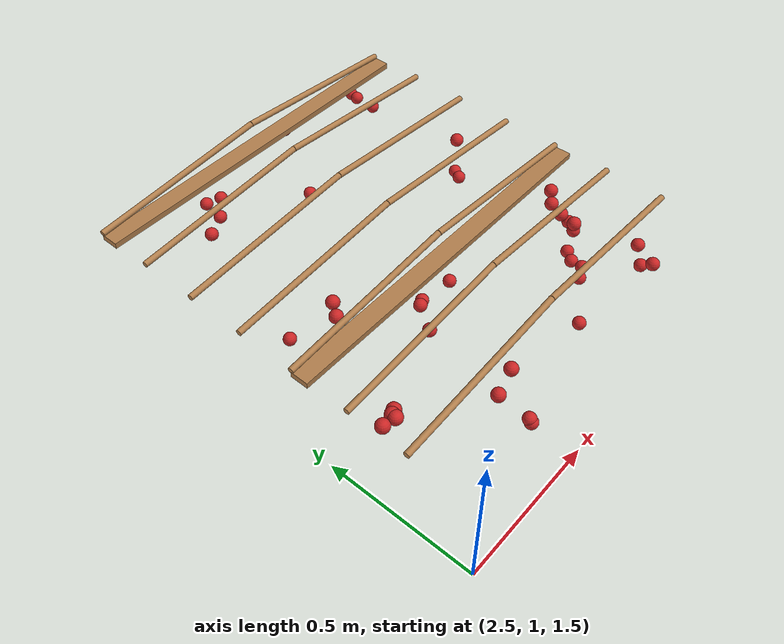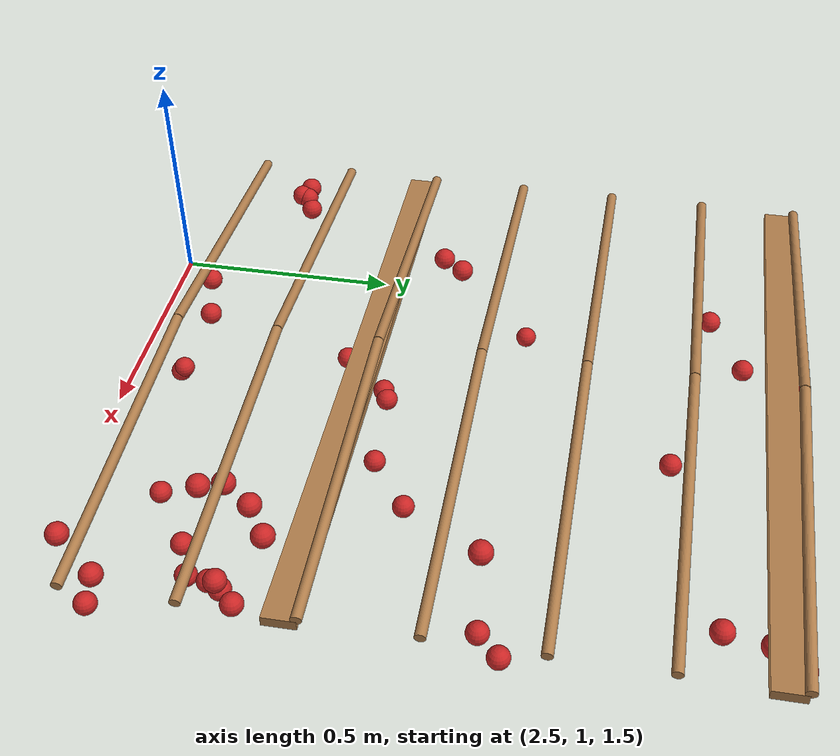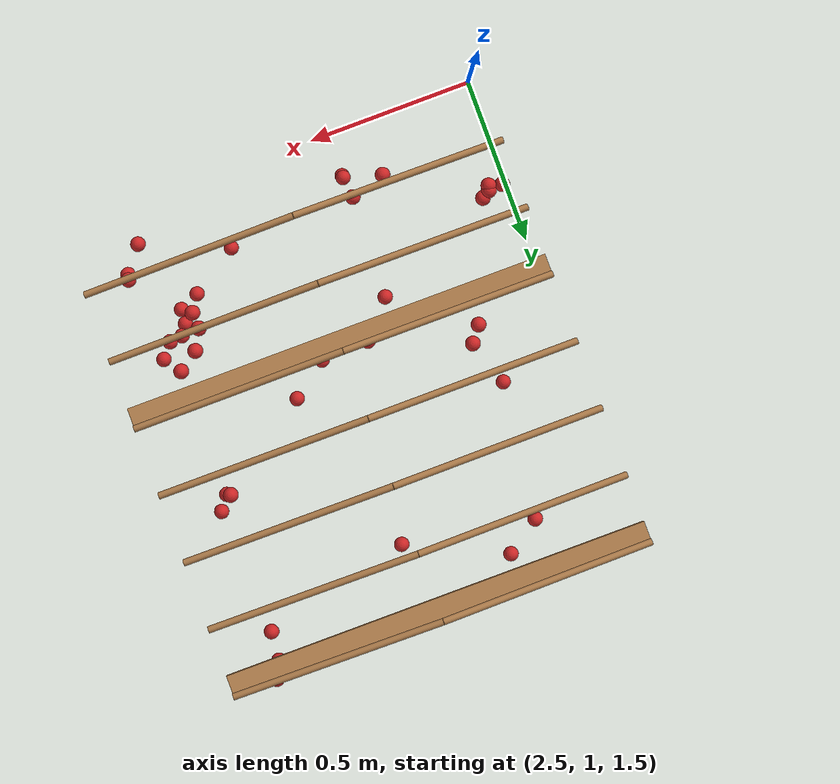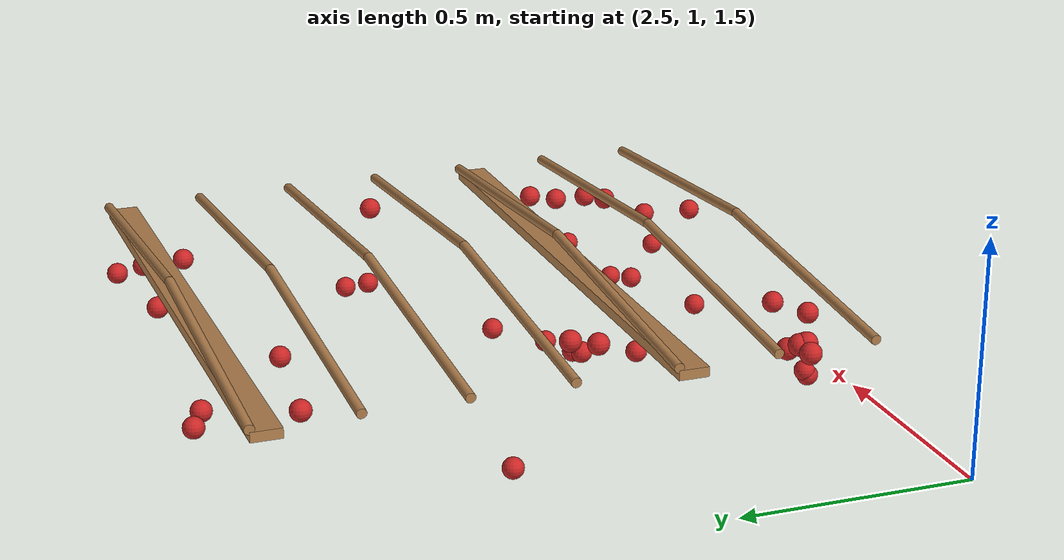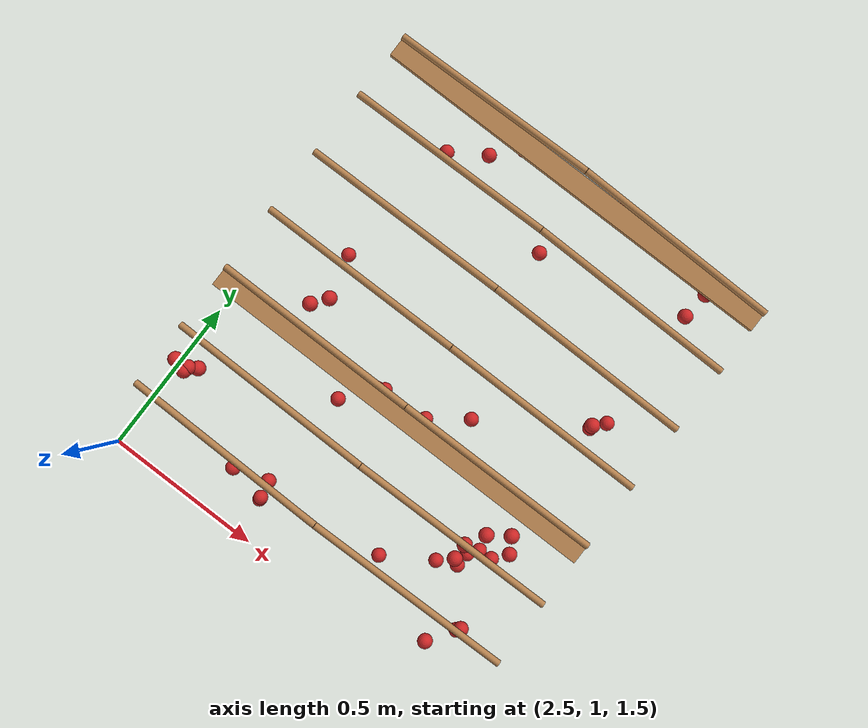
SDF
<sdf version="1.4">
 <model name="pergola">
  <link name="beam_16">
   <pose>3.125 1.6 1.81 0 0 0</pose>
   <collision name="collision"><geometry><box><size>1.25 0.06 0.02</size></box></geometry></collision>
   <visual name="visual">
    <geometry><box><size>1.25 0.06 0.02</size></box></geometry>
    <material><script><name>Gazebo/Wood</name></script></material>
   </visual>
   <inertial>
    <mass>5</mass>
    <inertia>
     <ixx>0.0016666666666666668</ixx>
     <ixy>0.0</ixy>
     <ixz>0.0</ixz>
     <iyy>0.6525416666666667</iyy>
     <iyz>0.0</iyz>
     <izz>0.6512083333333333</izz>
    </inertia>
   </inertial>
  </link>
  <link name="beam_17">
   <pose>3.125 2.4000000000000004 1.81 0 0 0</pose>
   <collision name="collision"><geometry><box><size>1.25 0.06 0.02</size></box></geometry></collision>
   <visual name="visual">
    <geometry><box><size>1.25 0.06 0.02</size></box></geometry>
    <material><script><name>Gazebo/Wood</name></script></material>
   </visual>
   <inertial>
    <mass>5</mass>
    <inertia>
     <ixx>0.0016666666666666668</ixx>
     <ixy>0.0</ixy>
     <ixz>0.0</ixz>
     <iyy>0.6525416666666667</iyy>
     <iyz>0.0</iyz>
     <izz>0.6512083333333333</izz>
    </inertia>
   </inertial>
  </link>
  <link name="vine_108">
   <pose>2.8125 1.2300000000000002 1.85 0 1.4909663410826592 0</pose>
   <collision name="collision">
    <geometry><cylinder><radius>0.01</radius><length>0.6269968101992226</length></cylinder></geometry>
   </collision>
   <visual name="visual">
    <geometry><cylinder><radius>0.01</radius><length>0.6269968101992226</length></cylinder></geometry>
    <material><script><name>Gazebo/WoodFloor</name></script></material>
   </visual>
   <inertial>
    <mass>5</mass>
    <inertia>
     <ixx>0.1639270833333333</ixx>
     <ixy>0.0</ixy>
     <ixz>0.0</ixz>
     <iyy>0.1639270833333333</iyy>
     <iyz>0.0</iyz>
     <izz>0.00025</izz>
    </inertia>
   </inertial>
  </link>
  <link name="vine_109">
   <pose>3.4375 1.2300000000000002 1.85 0 -1.4909663410826592 0</pose>
   <collision name="collision">
    <geometry><cylinder><radius>0.01</radius><length>0.6269968101992226</length></cylinder></geometry>
   </collision>
   <visual name="visual">
    <geometry><cylinder><radius>0.01</radius><length>0.6269968101992226</length></cylinder></geometry>
    <material><script><name>Gazebo/WoodFloor</name></script></material>
   </visual>
   <inertial>
    <mass>5</mass>
    <inertia>
     <ixx>0.1639270833333333</ixx>
     <ixy>0.0</ixy>
     <ixz>0.0</ixz>
     <iyy>0.1639270833333333</iyy>
     <iyz>0.0</iyz>
     <izz>0.00025</izz>
    </inertia>
   </inertial>
  </link>
  <link name="vine_110">
   <pose>2.8125 1.4300000000000002 1.85 0 1.4909663410826592 0</pose>
   <collision name="collision">
    <geometry><cylinder><radius>0.01</radius><length>0.6269968101992226</length></cylinder></geometry>
   </collision>
   <visual name="visual">
    <geometry><cylinder><radius>0.01</radius><length>0.6269968101992226</length></cylinder></geometry>
    <material><script><name>Gazebo/WoodFloor</name></script></material>
   </visual>
   <inertial>
    <mass>5</mass>
    <inertia>
     <ixx>0.1639270833333333</ixx>
     <ixy>0.0</ixy>
     <ixz>0.0</ixz>
     <iyy>0.1639270833333333</iyy>
     <iyz>0.0</iyz>
     <izz>0.00025</izz>
    </inertia>
   </inertial>
  </link>
  <link name="vine_111">
   <pose>3.4375 1.4300000000000002 1.85 0 -1.4909663410826592 0</pose>
   <collision name="collision">
    <geometry><cylinder><radius>0.01</radius><length>0.6269968101992226</length></cylinder></geometry>
   </collision>
   <visual name="visual">
    <geometry><cylinder><radius>0.01</radius><length>0.6269968101992226</length></cylinder></geometry>
    <material><script><name>Gazebo/WoodFloor</name></script></material>
   </visual>
   <inertial>
    <mass>5</mass>
    <inertia>
     <ixx>0.1639270833333333</ixx>
     <ixy>0.0</ixy>
     <ixz>0.0</ixz>
     <iyy>0.1639270833333333</iyy>
     <iyz>0.0</iyz>
     <izz>0.00025</izz>
    </inertia>
   </inertial>
  </link>
  <link name="vine_112">
   <pose>2.8125 1.6300000000000001 1.85 0 1.4909663410826592 0</pose>
   <collision name="collision">
    <geometry><cylinder><radius>0.01</radius><length>0.6269968101992226</length></cylinder></geometry>
   </collision>
   <visual name="visual">
    <geometry><cylinder><radius>0.01</radius><length>0.6269968101992226</length></cylinder></geometry>
    <material><script><name>Gazebo/WoodFloor</name></script></material>
   </visual>
   <inertial>
    <mass>5</mass>
    <inertia>
     <ixx>0.1639270833333333</ixx>
     <ixy>0.0</ixy>
     <ixz>0.0</ixz>
     <iyy>0.1639270833333333</iyy>
     <iyz>0.0</iyz>
     <izz>0.00025</izz>
    </inertia>
   </inertial>
  </link>
  <link name="vine_113">
   <pose>3.4375 1.6300000000000001 1.85 0 -1.4909663410826592 0</pose>
   <collision name="collision">
    <geometry><cylinder><radius>0.01</radius><length>0.6269968101992226</length></cylinder></geometry>
   </collision>
   <visual name="visual">
    <geometry><cylinder><radius>0.01</radius><length>0.6269968101992226</length></cylinder></geometry>
    <material><script><name>Gazebo/WoodFloor</name></script></material>
   </visual>
   <inertial>
    <mass>5</mass>
    <inertia>
     <ixx>0.1639270833333333</ixx>
     <ixy>0.0</ixy>
     <ixz>0.0</ixz>
     <iyy>0.1639270833333333</iyy>
     <iyz>0.0</iyz>
     <izz>0.00025</izz>
    </inertia>
   </inertial>
  </link>
  <link name="vine_114">
   <pose>2.8125 1.83 1.85 0 1.4909663410826592 0</pose>
   <collision name="collision">
    <geometry><cylinder><radius>0.01</radius><length>0.6269968101992226</length></cylinder></geometry>
   </collision>
   <visual name="visual">
    <geometry><cylinder><radius>0.01</radius><length>0.6269968101992226</length></cylinder></geometry>
    <material><script><name>Gazebo/WoodFloor</name></script></material>
   </visual>
   <inertial>
    <mass>5</mass>
    <inertia>
     <ixx>0.1639270833333333</ixx>
     <ixy>0.0</ixy>
     <ixz>0.0</ixz>
     <iyy>0.1639270833333333</iyy>
     <iyz>0.0</iyz>
     <izz>0.00025</izz>
    </inertia>
   </inertial>
  </link>
  <link name="vine_115">
   <pose>3.4375 1.83 1.85 0 -1.4909663410826592 0</pose>
   <collision name="collision">
    <geometry><cylinder><radius>0.01</radius><length>0.6269968101992226</length></cylinder></geometry>
   </collision>
   <visual name="visual">
    <geometry><cylinder><radius>0.01</radius><length>0.6269968101992226</length></cylinder></geometry>
    <material><script><name>Gazebo/WoodFloor</name></script></material>
   </visual>
   <inertial>
    <mass>5</mass>
    <inertia>
     <ixx>0.1639270833333333</ixx>
     <ixy>0.0</ixy>
     <ixz>0.0</ixz>
     <iyy>0.1639270833333333</iyy>
     <iyz>0.0</iyz>
     <izz>0.00025</izz>
    </inertia>
   </inertial>
  </link>
  <link name="vine_116">
   <pose>2.8125 2.03 1.85 0 1.4909663410826592 0</pose>
   <collision name="collision">
    <geometry><cylinder><radius>0.01</radius><length>0.6269968101992226</length></cylinder></geometry>
   </collision>
   <visual name="visual">
    <geometry><cylinder><radius>0.01</radius><length>0.6269968101992226</length></cylinder></geometry>
    <material><script><name>Gazebo/WoodFloor</name></script></material>
   </visual>
   <inertial>
    <mass>5</mass>
    <inertia>
     <ixx>0.1639270833333333</ixx>
     <ixy>0.0</ixy>
     <ixz>0.0</ixz>
     <iyy>0.1639270833333333</iyy>
     <iyz>0.0</iyz>
     <izz>0.00025</izz>
    </inertia>
   </inertial>
  </link>
  <link name="vine_117">
   <pose>3.4375 2.03 1.85 0 -1.4909663410826592 0</pose>
   <collision name="collision">
    <geometry><cylinder><radius>0.01</radius><length>0.6269968101992226</length></cylinder></geometry>
   </collision>
   <visual name="visual">
    <geometry><cylinder><radius>0.01</radius><length>0.6269968101992226</length></cylinder></geometry>
    <material><script><name>Gazebo/WoodFloor</name></script></material>
   </visual>
   <inertial>
    <mass>5</mass>
    <inertia>
     <ixx>0.1639270833333333</ixx>
     <ixy>0.0</ixy>
     <ixz>0.0</ixz>
     <iyy>0.1639270833333333</iyy>
     <iyz>0.0</iyz>
     <izz>0.00025</izz>
    </inertia>
   </inertial>
  </link>
  <link name="vine_118">
   <pose>2.8125 2.23 1.85 0 1.4909663410826592 0</pose>
   <collision name="collision">
    <geometry><cylinder><radius>0.01</radius><length>0.6269968101992226</length></cylinder></geometry>
   </collision>
   <visual name="visual">
    <geometry><cylinder><radius>0.01</radius><length>0.6269968101992226</length></cylinder></geometry>
    <material><script><name>Gazebo/WoodFloor</name></script></material>
   </visual>
   <inertial>
    <mass>5</mass>
    <inertia>
     <ixx>0.1639270833333333</ixx>
     <ixy>0.0</ixy>
     <ixz>0.0</ixz>
     <iyy>0.1639270833333333</iyy>
     <iyz>0.0</iyz>
     <izz>0.00025</izz>
    </inertia>
   </inertial>
  </link>
  <link name="vine_119">
   <pose>3.4375 2.23 1.85 0 -1.4909663410826592 0</pose>
   <collision name="collision">
    <geometry><cylinder><radius>0.01</radius><length>0.6269968101992226</length></cylinder></geometry>
   </collision>
   <visual name="visual">
    <geometry><cylinder><radius>0.01</radius><length>0.6269968101992226</length></cylinder></geometry>
    <material><script><name>Gazebo/WoodFloor</name></script></material>
   </visual>
   <inertial>
    <mass>5</mass>
    <inertia>
     <ixx>0.1639270833333333</ixx>
     <ixy>0.0</ixy>
     <ixz>0.0</ixz>
     <iyy>0.1639270833333333</iyy>
     <iyz>0.0</iyz>
     <izz>0.00025</izz>
    </inertia>
   </inertial>
  </link>
  <link name="vine_120">
   <pose>2.8125 2.43 1.85 0 1.4909663410826592 0</pose>
   <collision name="collision">
    <geometry><cylinder><radius>0.01</radius><length>0.6269968101992226</length></cylinder></geometry>
   </collision>
   <visual name="visual">
    <geometry><cylinder><radius>0.01</radius><length>0.6269968101992226</length></cylinder></geometry>
    <material><script><name>Gazebo/WoodFloor</name></script></material>
   </visual>
   <inertial>
    <mass>5</mass>
    <inertia>
     <ixx>0.1639270833333333</ixx>
     <ixy>0.0</ixy>
     <ixz>0.0</ixz>
     <iyy>0.1639270833333333</iyy>
     <iyz>0.0</iyz>
     <izz>0.00025</izz>
    </inertia>
   </inertial>
  </link>
  <link name="vine_121">
   <pose>3.4375 2.43 1.85 0 -1.4909663410826592 0</pose>
   <collision name="collision">
    <geometry><cylinder><radius>0.01</radius><length>0.6269968101992226</length></cylinder></geometry>
   </collision>
   <visual name="visual">
    <geometry><cylinder><radius>0.01</radius><length>0.6269968101992226</length></cylinder></geometry>
    <material><script><name>Gazebo/WoodFloor</name></script></material>
   </visual>
   <inertial>
    <mass>5</mass>
    <inertia>
     <ixx>0.1639270833333333</ixx>
     <ixy>0.0</ixy>
     <ixz>0.0</ixz>
     <iyy>0.1639270833333333</iyy>
     <iyz>0.0</iyz>
     <izz>0.00025</izz>
    </inertia>
   </inertial>
  </link>
  <link name="fruit_22">
   <pose>3.6042160734607642 2.390323298731228 1.7366323858877157 0 0 0</pose>
   <collision name="fruit_collision_22"><geometry><sphere><radius>0.022</radius></sphere></geometry></collision>
   <visual name="visual">
    <geometry><sphere><radius>0.022</radius></sphere></geometry>
    <material><script><name>Gazebo/Red</name></script></material>
   </visual>
   <inertial>
    <mass>0.05</mass>
    <inertia>
     <ixx>9.679999999999999e-06</ixx>
     <ixy>0.0</ixy>
     <ixz>0.0</ixz>
     <iyy>9.679999999999999e-06</iyy>
     <iyz>0.0</iyz>
     <izz>9.679999999999999e-06</izz>
    </inertia>
   </inertial>
   <sensor name="fruit_contact_22" type="contact">
    <plugin name="contact_plugin_22" filename="libcontact_plugin.so"/>
    <contact><collision>fruit_collision_22</collision><topic>fruit_contact_topic_22</topic></contact>
   </sensor>
  </link>
  <link name="fruit_77">
   <pose>2.7777220592115266 2.2677366420378333 1.722170488734448 0 0 0</pose>
   <collision name="fruit_collision_77"><geometry><sphere><radius>0.022</radius></sphere></geometry></collision>
   <visual name="visual">
    <geometry><sphere><radius>0.022</radius></sphere></geometry>
    <material><script><name>Gazebo/Red</name></script></material>
   </visual>
   <inertial>
    <mass>0.05</mass>
    <inertia>
     <ixx>9.679999999999999e-06</ixx>
     <ixy>0.0</ixy>
     <ixz>0.0</ixz>
     <iyy>9.679999999999999e-06</iyy>
     <iyz>0.0</iyz>
     <izz>9.679999999999999e-06</izz>
    </inertia>
   </inertial>
   <sensor name="fruit_contact_77" type="contact">
    <plugin name="contact_plugin_77" filename="libcontact_plugin.so"/>
    <contact><collision>fruit_collision_77</collision><topic>fruit_contact_topic_77</topic></contact>
   </sensor>
  </link>
  <link name="fruit_90">
   <pose>3.6370142411368276 1.1975529447697955 1.6298855087680122 0 0 0</pose>
   <collision name="fruit_collision_90"><geometry><sphere><radius>0.022</radius></sphere></geometry></collision>
   <visual name="visual">
    <geometry><sphere><radius>0.022</radius></sphere></geometry>
    <material><script><name>Gazebo/Red</name></script></material>
   </visual>
   <inertial>
    <mass>0.05</mass>
    <inertia>
     <ixx>9.679999999999999e-06</ixx>
     <ixy>0.0</ixy>
     <ixz>0.0</ixz>
     <iyy>9.679999999999999e-06</iyy>
     <iyz>0.0</iyz>
     <izz>9.679999999999999e-06</izz>
    </inertia>
   </inertial>
   <sensor name="fruit_contact_90" type="contact">
    <plugin name="contact_plugin_90" filename="libcontact_plugin.so"/>
    <contact><collision>fruit_collision_90</collision><topic>fruit_contact_topic_90</topic></contact>
   </sensor>
  </link>
  <link name="fruit_125">
   <pose>3.329742195719726 1.2257032476896506 1.59493650088647 0 0 0</pose>
   <collision name="fruit_collision_125"><geometry><sphere><radius>0.022</radius></sphere></geometry></collision>
   <visual name="visual">
    <geometry><sphere><radius>0.022</radius></sphere></geometry>
    <material><script><name>Gazebo/Red</name></script></material>
   </visual>
   <inertial>
    <mass>0.05</mass>
    <inertia>
     <ixx>9.679999999999999e-06</ixx>
     <ixy>0.0</ixy>
     <ixz>0.0</ixz>
     <iyy>9.679999999999999e-06</iyy>
     <iyz>0.0</iyz>
     <izz>9.679999999999999e-06</izz>
    </inertia>
   </inertial>
   <sensor name="fruit_contact_125" type="contact">
    <plugin name="contact_plugin_125" filename="libcontact_plugin.so"/>
    <contact><collision>fruit_collision_125</collision><topic>fruit_contact_topic_125</topic></contact>
   </sensor>
  </link>
  <link name="fruit_138">
   <pose>3.482537181798756 1.4283742432640028 1.8215436624711572 0 0 0</pose>
   <collision name="fruit_collision_138"><geometry><sphere><radius>0.022</radius></sphere></geometry></collision>
   <visual name="visual">
    <geometry><sphere><radius>0.022</radius></sphere></geometry>
    <material><script><name>Gazebo/Red</name></script></material>
   </visual>
   <inertial>
    <mass>0.05</mass>
    <inertia>
     <ixx>9.679999999999999e-06</ixx>
     <ixy>0.0</ixy>
     <ixz>0.0</ixz>
     <iyy>9.679999999999999e-06</iyy>
     <iyz>0.0</iyz>
     <izz>9.679999999999999e-06</izz>
    </inertia>
   </inertial>
   <sensor name="fruit_contact_138" type="contact">
    <plugin name="contact_plugin_138" filename="libcontact_plugin.so"/>
    <contact><collision>fruit_collision_138</collision><topic>fruit_contact_topic_138</topic></contact>
   </sensor>
  </link>
  <link name="fruit_157">
   <pose>2.716054375216853 1.8726901224957981 1.5695900463681238 0 0 0</pose>
   <collision name="fruit_collision_157"><geometry><sphere><radius>0.022</radius></sphere></geometry></collision>
   <visual name="visual">
    <geometry><sphere><radius>0.022</radius></sphere></geometry>
    <material><script><name>Gazebo/Red</name></script></material>
   </visual>
   <inertial>
    <mass>0.05</mass>
    <inertia>
     <ixx>9.679999999999999e-06</ixx>
     <ixy>0.0</ixy>
     <ixz>0.0</ixz>
     <iyy>9.679999999999999e-06</iyy>
     <iyz>0.0</iyz>
     <izz>9.679999999999999e-06</izz>
    </inertia>
   </inertial>
   <sensor name="fruit_contact_157" type="contact">
    <plugin name="contact_plugin_157" filename="libcontact_plugin.so"/>
    <contact><collision>fruit_collision_157</collision><topic>fruit_contact_topic_157</topic></contact>
   </sensor>
  </link>
  <link name="fruit_171">
   <pose>2.8464388945641494 1.1956421035334137 1.7481462825417047 0 0 0</pose>
   <collision name="fruit_collision_171"><geometry><sphere><radius>0.022</radius></sphere></geometry></collision>
   <visual name="visual">
    <geometry><sphere><radius>0.022</radius></sphere></geometry>
    <material><script><name>Gazebo/Red</name></script></material>
   </visual>
   <inertial>
    <mass>0.05</mass>
    <inertia>
     <ixx>9.679999999999999e-06</ixx>
     <ixy>0.0</ixy>
     <ixz>0.0</ixz>
     <iyy>9.679999999999999e-06</iyy>
     <iyz>0.0</iyz>
     <izz>9.679999999999999e-06</izz>
    </inertia>
   </inertial>
   <sensor name="fruit_contact_171" type="contact">
    <plugin name="contact_plugin_171" filename="libcontact_plugin.so"/>
    <contact><collision>fruit_collision_171</collision><topic>fruit_contact_topic_171</topic></contact>
   </sensor>
  </link>
  <link name="fruit_193">
   <pose>3.2708199744866335 2.4278009185610814 1.7675410972440744 0 0 0</pose>
   <collision name="fruit_collision_193"><geometry><sphere><radius>0.022</radius></sphere></geometry></collision>
   <visual name="visual">
    <geometry><sphere><radius>0.022</radius></sphere></geometry>
    <material><script><name>Gazebo/Red</name></script></material>
   </visual>
   <inertial>
    <mass>0.05</mass>
    <inertia>
     <ixx>9.679999999999999e-06</ixx>
     <ixy>0.0</ixy>
     <ixz>0.0</ixz>
     <iyy>9.679999999999999e-06</iyy>
     <iyz>0.0</iyz>
     <izz>9.679999999999999e-06</izz>
    </inertia>
   </inertial>
   <sensor name="fruit_contact_193" type="contact">
    <plugin name="contact_plugin_193" filename="libcontact_plugin.so"/>
    <contact><collision>fruit_collision_193</collision><topic>fruit_contact_topic_193</topic></contact>
   </sensor>
  </link>
  <link name="fruit_205">
   <pose>2.741341677895579 1.6909575046930554 1.7889453210980222 0 0 0</pose>
   <collision name="fruit_collision_205"><geometry><sphere><radius>0.022</radius></sphere></geometry></collision>
   <visual name="visual">
    <geometry><sphere><radius>0.022</radius></sphere></geometry>
    <material><script><name>Gazebo/Red</name></script></material>
   </visual>
   <inertial>
    <mass>0.05</mass>
    <inertia>
     <ixx>9.679999999999999e-06</ixx>
     <ixy>0.0</ixy>
     <ixz>0.0</ixz>
     <iyy>9.679999999999999e-06</iyy>
     <iyz>0.0</iyz>
     <izz>9.679999999999999e-06</izz>
    </inertia>
   </inertial>
   <sensor name="fruit_contact_205" type="contact">
    <plugin name="contact_plugin_205" filename="libcontact_plugin.so"/>
    <contact><collision>fruit_collision_205</collision><topic>fruit_contact_topic_205</topic></contact>
   </sensor>
  </link>
  <link name="fruit_213">
   <pose>3.588907817271077 1.8978325460886634 1.6397117616325494 0 0 0</pose>
   <collision name="fruit_collision_213"><geometry><sphere><radius>0.022</radius></sphere></geometry></collision>
   <visual name="visual">
    <geometry><sphere><radius>0.022</radius></sphere></geometry>
    <material><script><name>Gazebo/Red</name></script></material>
   </visual>
   <inertial>
    <mass>0.05</mass>
    <inertia>
     <ixx>9.679999999999999e-06</ixx>
     <ixy>0.0</ixy>
     <ixz>0.0</ixz>
     <iyy>9.679999999999999e-06</iyy>
     <iyz>0.0</iyz>
     <izz>9.679999999999999e-06</izz>
    </inertia>
   </inertial>
   <sensor name="fruit_contact_213" type="contact">
    <plugin name="contact_plugin_213" filename="libcontact_plugin.so"/>
    <contact><collision>fruit_collision_213</collision><topic>fruit_contact_topic_213</topic></contact>
   </sensor>
  </link>
  <link name="fruit_222">
   <pose>3.5696658711676825 1.1364199060318343 1.728486895754031 0 0 0</pose>
   <collision name="fruit_collision_222"><geometry><sphere><radius>0.022</radius></sphere></geometry></collision>
   <visual name="visual">
    <geometry><sphere><radius>0.022</radius></sphere></geometry>
    <material><script><name>Gazebo/Red</name></script></material>
   </visual>
   <inertial>
    <mass>0.05</mass>
    <inertia>
     <ixx>9.679999999999999e-06</ixx>
     <ixy>0.0</ixy>
     <ixz>0.0</ixz>
     <iyy>9.679999999999999e-06</iyy>
     <iyz>0.0</iyz>
     <izz>9.679999999999999e-06</izz>
    </inertia>
   </inertial>
   <sensor name="fruit_contact_222" type="contact">
    <plugin name="contact_plugin_222" filename="libcontact_plugin.so"/>
    <contact><collision>fruit_collision_222</collision><topic>fruit_contact_topic_222</topic></contact>
   </sensor>
  </link>
  <link name="fruit_231">
   <pose>3.5852798248924134 1.4269860410477653 1.6782207255310826 0 0 0</pose>
   <collision name="fruit_collision_231"><geometry><sphere><radius>0.022</radius></sphere></geometry></collision>
   <visual name="visual">
    <geometry><sphere><radius>0.022</radius></sphere></geometry>
    <material><script><name>Gazebo/Red</name></script></material>
   </visual>
   <inertial>
    <mass>0.05</mass>
    <inertia>
     <ixx>9.679999999999999e-06</ixx>
     <ixy>0.0</ixy>
     <ixz>0.0</ixz>
     <iyy>9.679999999999999e-06</iyy>
     <iyz>0.0</iyz>
     <izz>9.679999999999999e-06</izz>
    </inertia>
   </inertial>
   <sensor name="fruit_contact_231" type="contact">
    <plugin name="contact_plugin_231" filename="libcontact_plugin.so"/>
    <contact><collision>fruit_collision_231</collision><topic>fruit_contact_topic_231</topic></contact>
   </sensor>
  </link>
  <link name="fruit_248">
   <pose>3.468882747884183 1.3196782125649715 1.6209497519036276 0 0 0</pose>
   <collision name="fruit_collision_248"><geometry><sphere><radius>0.022</radius></sphere></geometry></collision>
   <visual name="visual">
    <geometry><sphere><radius>0.022</radius></sphere></geometry>
    <material><script><name>Gazebo/Red</name></script></material>
   </visual>
   <inertial>
    <mass>0.05</mass>
    <inertia>
     <ixx>9.679999999999999e-06</ixx>
     <ixy>0.0</ixy>
     <ixz>0.0</ixz>
     <iyy>9.679999999999999e-06</iyy>
     <iyz>0.0</iyz>
     <izz>9.679999999999999e-06</izz>
    </inertia>
   </inertial>
   <sensor name="fruit_contact_248" type="contact">
    <plugin name="contact_plugin_248" filename="libcontact_plugin.so"/>
    <contact><collision>fruit_collision_248</collision><topic>fruit_contact_topic_248</topic></contact>
   </sensor>
  </link>
  <link name="fruit_254">
   <pose>2.875779068658833 2.3420653028918514 1.6831389367654828 0 0 0</pose>
   <collision name="fruit_collision_254"><geometry><sphere><radius>0.022</radius></sphere></geometry></collision>
   <visual name="visual">
    <geometry><sphere><radius>0.022</radius></sphere></geometry>
    <material><script><name>Gazebo/Red</name></script></material>
   </visual>
   <inertial>
    <mass>0.05</mass>
    <inertia>
     <ixx>9.679999999999999e-06</ixx>
     <ixy>0.0</ixy>
     <ixz>0.0</ixz>
     <iyy>9.679999999999999e-06</iyy>
     <iyz>0.0</iyz>
     <izz>9.679999999999999e-06</izz>
    </inertia>
   </inertial>
   <sensor name="fruit_contact_254" type="contact">
    <plugin name="contact_plugin_254" filename="libcontact_plugin.so"/>
    <contact><collision>fruit_collision_254</collision><topic>fruit_contact_topic_254</topic></contact>
   </sensor>
  </link>
  <link name="fruit_256">
   <pose>3.5610736933404863 1.897363465771663 1.821746921978796 0 0 0</pose>
   <collision name="fruit_collision_256"><geometry><sphere><radius>0.022</radius></sphere></geometry></collision>
   <visual name="visual">
    <geometry><sphere><radius>0.022</radius></sphere></geometry>
    <material><script><name>Gazebo/Red</name></script></material>
   </visual>
   <inertial>
    <mass>0.05</mass>
    <inertia>
     <ixx>9.679999999999999e-06</ixx>
     <ixy>0.0</ixy>
     <ixz>0.0</ixz>
     <iyy>9.679999999999999e-06</iyy>
     <iyz>0.0</iyz>
     <izz>9.679999999999999e-06</izz>
    </inertia>
   </inertial>
   <sensor name="fruit_contact_256" type="contact">
    <plugin name="contact_plugin_256" filename="libcontact_plugin.so"/>
    <contact><collision>fruit_collision_256</collision><topic>fruit_contact_topic_256</topic></contact>
   </sensor>
  </link>
  <link name="fruit_303">
   <pose>3.194069569440223 1.6278953154495133 1.614322405554756 0 0 0</pose>
   <collision name="fruit_collision_303"><geometry><sphere><radius>0.022</radius></sphere></geometry></collision>
   <visual name="visual">
    <geometry><sphere><radius>0.022</radius></sphere></geometry>
    <material><script><name>Gazebo/Red</name></script></material>
   </visual>
   <inertial>
    <mass>0.05</mass>
    <inertia>
     <ixx>9.679999999999999e-06</ixx>
     <ixy>0.0</ixy>
     <ixz>0.0</ixz>
     <iyy>9.679999999999999e-06</iyy>
     <iyz>0.0</iyz>
     <izz>9.679999999999999e-06</izz>
    </inertia>
   </inertial>
   <sensor name="fruit_contact_303" type="contact">
    <plugin name="contact_plugin_303" filename="libcontact_plugin.so"/>
    <contact><collision>fruit_collision_303</collision><topic>fruit_contact_topic_303</topic></contact>
   </sensor>
  </link>
  <link name="fruit_324">
   <pose>2.9579807294426406 1.5207849685629424 1.6671188638524705 0 0 0</pose>
   <collision name="fruit_collision_324"><geometry><sphere><radius>0.022</radius></sphere></geometry></collision>
   <visual name="visual">
    <geometry><sphere><radius>0.022</radius></sphere></geometry>
    <material><script><name>Gazebo/Red</name></script></material>
   </visual>
   <inertial>
    <mass>0.05</mass>
    <inertia>
     <ixx>9.679999999999999e-06</ixx>
     <ixy>0.0</ixy>
     <ixz>0.0</ixz>
     <iyy>9.679999999999999e-06</iyy>
     <iyz>0.0</iyz>
     <izz>9.679999999999999e-06</izz>
    </inertia>
   </inertial>
   <sensor name="fruit_contact_324" type="contact">
    <plugin name="contact_plugin_324" filename="libcontact_plugin.so"/>
    <contact><collision>fruit_collision_324</collision><topic>fruit_contact_topic_324</topic></contact>
   </sensor>
  </link>
  <link name="fruit_327">
   <pose>3.5947982073064795 2.3053033396548854 1.74367867693538 0 0 0</pose>
   <collision name="fruit_collision_327"><geometry><sphere><radius>0.022</radius></sphere></geometry></collision>
   <visual name="visual">
    <geometry><sphere><radius>0.022</radius></sphere></geometry>
    <material><script><name>Gazebo/Red</name></script></material>
   </visual>
   <inertial>
    <mass>0.05</mass>
    <inertia>
     <ixx>9.679999999999999e-06</ixx>
     <ixy>0.0</ixy>
     <ixz>0.0</ixz>
     <iyy>9.679999999999999e-06</iyy>
     <iyz>0.0</iyz>
     <izz>9.679999999999999e-06</izz>
    </inertia>
   </inertial>
   <sensor name="fruit_contact_327" type="contact">
    <plugin name="contact_plugin_327" filename="libcontact_plugin.so"/>
    <contact><collision>fruit_collision_327</collision><topic>fruit_contact_topic_327</topic></contact>
   </sensor>
  </link>
  <link name="fruit_329">
   <pose>3.1619692486153075 2.207978989144776 1.672494103210595 0 0 0</pose>
   <collision name="fruit_collision_329"><geometry><sphere><radius>0.022</radius></sphere></geometry></collision>
   <visual name="visual">
    <geometry><sphere><radius>0.022</radius></sphere></geometry>
    <material><script><name>Gazebo/Red</name></script></material>
   </visual>
   <inertial>
    <mass>0.05</mass>
    <inertia>
     <ixx>9.679999999999999e-06</ixx>
     <ixy>0.0</ixy>
     <ixz>0.0</ixz>
     <iyy>9.679999999999999e-06</iyy>
     <iyz>0.0</iyz>
     <izz>9.679999999999999e-06</izz>
    </inertia>
   </inertial>
   <sensor name="fruit_contact_329" type="contact">
    <plugin name="contact_plugin_329" filename="libcontact_plugin.so"/>
    <contact><collision>fruit_collision_329</collision><topic>fruit_contact_topic_329</topic></contact>
   </sensor>
  </link>
  <link name="fruit_345">
   <pose>3.4853329257638768 1.380430025244699 1.8088181221444193 0 0 0</pose>
   <collision name="fruit_collision_345"><geometry><sphere><radius>0.022</radius></sphere></geometry></collision>
   <visual name="visual">
    <geometry><sphere><radius>0.022</radius></sphere></geometry>
    <material><script><name>Gazebo/Red</name></script></material>
   </visual>
   <inertial>
    <mass>0.05</mass>
    <inertia>
     <ixx>9.679999999999999e-06</ixx>
     <ixy>0.0</ixy>
     <ixz>0.0</ixz>
     <iyy>9.679999999999999e-06</iyy>
     <iyz>0.0</iyz>
     <izz>9.679999999999999e-06</izz>
    </inertia>
   </inertial>
   <sensor name="fruit_contact_345" type="contact">
    <plugin name="contact_plugin_345" filename="libcontact_plugin.so"/>
    <contact><collision>fruit_collision_345</collision><topic>fruit_contact_topic_345</topic></contact>
   </sensor>
  </link>
  <link name="fruit_359">
   <pose>3.0486557833255516 1.6232390452571104 1.6470257615617991 0 0 0</pose>
   <collision name="fruit_collision_359"><geometry><sphere><radius>0.022</radius></sphere></geometry></collision>
   <visual name="visual">
    <geometry><sphere><radius>0.022</radius></sphere></geometry>
    <material><script><name>Gazebo/Red</name></script></material>
   </visual>
   <inertial>
    <mass>0.05</mass>
    <inertia>
     <ixx>9.679999999999999e-06</ixx>
     <ixy>0.0</ixy>
     <ixz>0.0</ixz>
     <iyy>9.679999999999999e-06</iyy>
     <iyz>0.0</iyz>
     <izz>9.679999999999999e-06</izz>
    </inertia>
   </inertial>
   <sensor name="fruit_contact_359" type="contact">
    <plugin name="contact_plugin_359" filename="libcontact_plugin.so"/>
    <contact><collision>fruit_collision_359</collision><topic>fruit_contact_topic_359</topic></contact>
   </sensor>
  </link>
  <link name="fruit_388">
   <pose>2.580117532120326 1.3333051083498515 1.8029660815471935 0 0 0</pose>
   <collision name="fruit_collision_388"><geometry><sphere><radius>0.022</radius></sphere></geometry></collision>
   <visual name="visual">
    <geometry><sphere><radius>0.022</radius></sphere></geometry>
    <material><script><name>Gazebo/Red</name></script></material>
   </visual>
   <inertial>
    <mass>0.05</mass>
    <inertia>
     <ixx>9.679999999999999e-06</ixx>
     <ixy>0.0</ixy>
     <ixz>0.0</ixz>
     <iyy>9.679999999999999e-06</iyy>
     <iyz>0.0</iyz>
     <izz>9.679999999999999e-06</izz>
    </inertia>
   </inertial>
   <sensor name="fruit_contact_388" type="contact">
    <plugin name="contact_plugin_388" filename="libcontact_plugin.so"/>
    <contact><collision>fruit_collision_388</collision><topic>fruit_contact_topic_388</topic></contact>
   </sensor>
  </link>
  <link name="fruit_406">
   <pose>3.621177579093106 1.4678708935381408 1.66657366137219 0 0 0</pose>
   <collision name="fruit_collision_406"><geometry><sphere><radius>0.022</radius></sphere></geometry></collision>
   <visual name="visual">
    <geometry><sphere><radius>0.022</radius></sphere></geometry>
    <material><script><name>Gazebo/Red</name></script></material>
   </visual>
   <inertial>
    <mass>0.05</mass>
    <inertia>
     <ixx>9.679999999999999e-06</ixx>
     <ixy>0.0</ixy>
     <ixz>0.0</ixz>
     <iyy>9.679999999999999e-06</iyy>
     <iyz>0.0</iyz>
     <izz>9.679999999999999e-06</izz>
    </inertia>
   </inertial>
   <sensor name="fruit_contact_406" type="contact">
    <plugin name="contact_plugin_406" filename="libcontact_plugin.so"/>
    <contact><collision>fruit_collision_406</collision><topic>fruit_contact_topic_406</topic></contact>
   </sensor>
  </link>
  <link name="fruit_438">
   <pose>2.9474531850650907 1.2246143479281952 1.7387450479077884 0 0 0</pose>
   <collision name="fruit_collision_438"><geometry><sphere><radius>0.022</radius></sphere></geometry></collision>
   <visual name="visual">
    <geometry><sphere><radius>0.022</radius></sphere></geometry>
    <material><script><name>Gazebo/Red</name></script></material>
   </visual>
   <inertial>
    <mass>0.05</mass>
    <inertia>
     <ixx>9.679999999999999e-06</ixx>
     <ixy>0.0</ixy>
     <ixz>0.0</ixz>
     <iyy>9.679999999999999e-06</iyy>
     <iyz>0.0</iyz>
     <izz>9.679999999999999e-06</izz>
    </inertia>
   </inertial>
   <sensor name="fruit_contact_438" type="contact">
    <plugin name="contact_plugin_438" filename="libcontact_plugin.so"/>
    <contact><collision>fruit_collision_438</collision><topic>fruit_contact_topic_438</topic></contact>
   </sensor>
  </link>
  <link name="fruit_455">
   <pose>2.60499499637651 1.3598833280278677 1.7853478720088918 0 0 0</pose>
   <collision name="fruit_collision_455"><geometry><sphere><radius>0.022</radius></sphere></geometry></collision>
   <visual name="visual">
    <geometry><sphere><radius>0.022</radius></sphere></geometry>
    <material><script><name>Gazebo/Red</name></script></material>
   </visual>
   <inertial>
    <mass>0.05</mass>
    <inertia>
     <ixx>9.679999999999999e-06</ixx>
     <ixy>0.0</ixy>
     <ixz>0.0</ixz>
     <iyy>9.679999999999999e-06</iyy>
     <iyz>0.0</iyz>
     <izz>9.679999999999999e-06</izz>
    </inertia>
   </inertial>
   <sensor name="fruit_contact_455" type="contact">
    <plugin name="contact_plugin_455" filename="libcontact_plugin.so"/>
    <contact><collision>fruit_collision_455</collision><topic>fruit_contact_topic_455</topic></contact>
   </sensor>
  </link>
  <link name="fruit_470">
   <pose>3.528514187471284 1.3453946111061417 1.6070310320002212 0 0 0</pose>
   <collision name="fruit_collision_470"><geometry><sphere><radius>0.022</radius></sphere></geometry></collision>
   <visual name="visual">
    <geometry><sphere><radius>0.022</radius></sphere></geometry>
    <material><script><name>Gazebo/Red</name></script></material>
   </visual>
   <inertial>
    <mass>0.05</mass>
    <inertia>
     <ixx>9.679999999999999e-06</ixx>
     <ixy>0.0</ixy>
     <ixz>0.0</ixz>
     <iyy>9.679999999999999e-06</iyy>
     <iyz>0.0</iyz>
     <izz>9.679999999999999e-06</izz>
    </inertia>
   </inertial>
   <sensor name="fruit_contact_470" type="contact">
    <plugin name="contact_plugin_470" filename="libcontact_plugin.so"/>
    <contact><collision>fruit_collision_470</collision><topic>fruit_contact_topic_470</topic></contact>
   </sensor>
  </link>
  <link name="fruit_480">
   <pose>3.632259040139053 1.2211716335322678 1.7094024595203525 0 0 0</pose>
   <collision name="fruit_collision_480"><geometry><sphere><radius>0.022</radius></sphere></geometry></collision>
   <visual name="visual">
    <geometry><sphere><radius>0.022</radius></sphere></geometry>
    <material><script><name>Gazebo/Red</name></script></material>
   </visual>
   <inertial>
    <mass>0.05</mass>
    <inertia>
     <ixx>9.679999999999999e-06</ixx>
     <ixy>0.0</ixy>
     <ixz>0.0</ixz>
     <iyy>9.679999999999999e-06</iyy>
     <iyz>0.0</iyz>
     <izz>9.679999999999999e-06</izz>
    </inertia>
   </inertial>
   <sensor name="fruit_contact_480" type="contact">
    <plugin name="contact_plugin_480" filename="libcontact_plugin.so"/>
    <contact><collision>fruit_collision_480</collision><topic>fruit_contact_topic_480</topic></contact>
   </sensor>
  </link>
  <link name="fruit_511">
   <pose>2.541666127935067 1.3435036481474245 1.797914206624674 0 0 0</pose>
   <collision name="fruit_collision_511"><geometry><sphere><radius>0.022</radius></sphere></geometry></collision>
   <visual name="visual">
    <geometry><sphere><radius>0.022</radius></sphere></geometry>
    <material><script><name>Gazebo/Red</name></script></material>
   </visual>
   <inertial>
    <mass>0.05</mass>
    <inertia>
     <ixx>9.679999999999999e-06</ixx>
     <ixy>0.0</ixy>
     <ixz>0.0</ixz>
     <iyy>9.679999999999999e-06</iyy>
     <iyz>0.0</iyz>
     <izz>9.679999999999999e-06</izz>
    </inertia>
   </inertial>
   <sensor name="fruit_contact_511" type="contact">
    <plugin name="contact_plugin_511" filename="libcontact_plugin.so"/>
    <contact><collision>fruit_collision_511</collision><topic>fruit_contact_topic_511</topic></contact>
   </sensor>
  </link>
  <link name="fruit_543">
   <pose>2.902631641892232 2.443529193046376 1.661790601525239 0 0 0</pose>
   <collision name="fruit_collision_543"><geometry><sphere><radius>0.022</radius></sphere></geometry></collision>
   <visual name="visual">
    <geometry><sphere><radius>0.022</radius></sphere></geometry>
    <material><script><name>Gazebo/Red</name></script></material>
   </visual>
   <inertial>
    <mass>0.05</mass>
    <inertia>
     <ixx>9.679999999999999e-06</ixx>
     <ixy>0.0</ixy>
     <ixz>0.0</ixz>
     <iyy>9.679999999999999e-06</iyy>
     <iyz>0.0</iyz>
     <izz>9.679999999999999e-06</izz>
    </inertia>
   </inertial>
   <sensor name="fruit_contact_543" type="contact">
    <plugin name="contact_plugin_543" filename="libcontact_plugin.so"/>
    <contact><collision>fruit_collision_543</collision><topic>fruit_contact_topic_543</topic></contact>
   </sensor>
  </link>
  <link name="fruit_544">
   <pose>3.027324505934386 1.6124775731176861 1.6513070358867654 0 0 0</pose>
   <collision name="fruit_collision_544"><geometry><sphere><radius>0.022</radius></sphere></geometry></collision>
   <visual name="visual">
    <geometry><sphere><radius>0.022</radius></sphere></geometry>
    <material><script><name>Gazebo/Red</name></script></material>
   </visual>
   <inertial>
    <mass>0.05</mass>
    <inertia>
     <ixx>9.679999999999999e-06</ixx>
     <ixy>0.0</ixy>
     <ixz>0.0</ixz>
     <iyy>9.679999999999999e-06</iyy>
     <iyz>0.0</iyz>
     <izz>9.679999999999999e-06</izz>
    </inertia>
   </inertial>
   <sensor name="fruit_contact_544" type="contact">
    <plugin name="contact_plugin_544" filename="libcontact_plugin.so"/>
    <contact><collision>fruit_collision_544</collision><topic>fruit_contact_topic_544</topic></contact>
   </sensor>
  </link>
  <link name="fruit_602">
   <pose>3.629789322717672 2.4418367545629653 1.7165519879418645 0 0 0</pose>
   <collision name="fruit_collision_602"><geometry><sphere><radius>0.022</radius></sphere></geometry></collision>
   <visual name="visual">
    <geometry><sphere><radius>0.022</radius></sphere></geometry>
    <material><script><name>Gazebo/Red</name></script></material>
   </visual>
   <inertial>
    <mass>0.05</mass>
    <inertia>
     <ixx>9.679999999999999e-06</ixx>
     <ixy>0.0</ixy>
     <ixz>0.0</ixz>
     <iyy>9.679999999999999e-06</iyy>
     <iyz>0.0</iyz>
     <izz>9.679999999999999e-06</izz>
    </inertia>
   </inertial>
   <sensor name="fruit_contact_602" type="contact">
    <plugin name="contact_plugin_602" filename="libcontact_plugin.so"/>
    <contact><collision>fruit_collision_602</collision><topic>fruit_contact_topic_602</topic></contact>
   </sensor>
  </link>
  <link name="fruit_633">
   <pose>2.9497275437908823 1.1439900335833086 1.574763334835356 0 0 0</pose>
   <collision name="fruit_collision_633"><geometry><sphere><radius>0.022</radius></sphere></geometry></collision>
   <visual name="visual">
    <geometry><sphere><radius>0.022</radius></sphere></geometry>
    <material><script><name>Gazebo/Red</name></script></material>
   </visual>
   <inertial>
    <mass>0.05</mass>
    <inertia>
     <ixx>9.679999999999999e-06</ixx>
     <ixy>0.0</ixy>
     <ixz>0.0</ixz>
     <iyy>9.679999999999999e-06</iyy>
     <iyz>0.0</iyz>
     <izz>9.679999999999999e-06</izz>
    </inertia>
   </inertial>
   <sensor name="fruit_contact_633" type="contact">
    <plugin name="contact_plugin_633" filename="libcontact_plugin.so"/>
    <contact><collision>fruit_collision_633</collision><topic>fruit_contact_topic_633</topic></contact>
   </sensor>
  </link>
  <link name="fruit_659">
   <pose>3.572680773462664 1.52341002067149 1.802936504774771 0 0 0</pose>
   <collision name="fruit_collision_659"><geometry><sphere><radius>0.022</radius></sphere></geometry></collision>
   <visual name="visual">
    <geometry><sphere><radius>0.022</radius></sphere></geometry>
    <material><script><name>Gazebo/Red</name></script></material>
   </visual>
   <inertial>
    <mass>0.05</mass>
    <inertia>
     <ixx>9.679999999999999e-06</ixx>
     <ixy>0.0</ixy>
     <ixz>0.0</ixz>
     <iyy>9.679999999999999e-06</iyy>
     <iyz>0.0</iyz>
     <izz>9.679999999999999e-06</izz>
    </inertia>
   </inertial>
   <sensor name="fruit_contact_659" type="contact">
    <plugin name="contact_plugin_659" filename="libcontact_plugin.so"/>
    <contact><collision>fruit_collision_659</collision><topic>fruit_contact_topic_659</topic></contact>
   </sensor>
  </link>
  <link name="fruit_660">
   <pose>2.9467094942000696 2.4183260372164463 1.6739796879557092 0 0 0</pose>
   <collision name="fruit_collision_660"><geometry><sphere><radius>0.022</radius></sphere></geometry></collision>
   <visual name="visual">
    <geometry><sphere><radius>0.022</radius></sphere></geometry>
    <material><script><name>Gazebo/Red</name></script></material>
   </visual>
   <inertial>
    <mass>0.05</mass>
    <inertia>
     <ixx>9.679999999999999e-06</ixx>
     <ixy>0.0</ixy>
     <ixz>0.0</ixz>
     <iyy>9.679999999999999e-06</iyy>
     <iyz>0.0</iyz>
     <izz>9.679999999999999e-06</izz>
    </inertia>
   </inertial>
   <sensor name="fruit_contact_660" type="contact">
    <plugin name="contact_plugin_660" filename="libcontact_plugin.so"/>
    <contact><collision>fruit_collision_660</collision><topic>fruit_contact_topic_660</topic></contact>
   </sensor>
  </link>
  <link name="fruit_678">
   <pose>3.6219765710997236 1.9400930253856548 1.6235258206106935 0 0 0</pose>
   <collision name="fruit_collision_678"><geometry><sphere><radius>0.022</radius></sphere></geometry></collision>
   <visual name="visual">
    <geometry><sphere><radius>0.022</radius></sphere></geometry>
    <material><script><name>Gazebo/Red</name></script></material>
   </visual>
   <inertial>
    <mass>0.05</mass>
    <inertia>
     <ixx>9.679999999999999e-06</ixx>
     <ixy>0.0</ixy>
     <ixz>0.0</ixz>
     <iyy>9.679999999999999e-06</iyy>
     <iyz>0.0</iyz>
     <izz>9.679999999999999e-06</izz>
    </inertia>
   </inertial>
   <sensor name="fruit_contact_678" type="contact">
    <plugin name="contact_plugin_678" filename="libcontact_plugin.so"/>
    <contact><collision>fruit_collision_678</collision><topic>fruit_contact_topic_678</topic></contact>
   </sensor>
  </link>
  <link name="fruit_684">
   <pose>2.5834761356942617 1.3470325159452303 1.7998014026726983 0 0 0</pose>
   <collision name="fruit_collision_684"><geometry><sphere><radius>0.022</radius></sphere></geometry></collision>
   <visual name="visual">
    <geometry><sphere><radius>0.022</radius></sphere></geometry>
    <material><script><name>Gazebo/Red</name></script></material>
   </visual>
   <inertial>
    <mass>0.05</mass>
    <inertia>
     <ixx>9.679999999999999e-06</ixx>
     <ixy>0.0</ixy>
     <ixz>0.0</ixz>
     <iyy>9.679999999999999e-06</iyy>
     <iyz>0.0</iyz>
     <izz>9.679999999999999e-06</izz>
    </inertia>
   </inertial>
   <sensor name="fruit_contact_684" type="contact">
    <plugin name="contact_plugin_684" filename="libcontact_plugin.so"/>
    <contact><collision>fruit_collision_684</collision><topic>fruit_contact_topic_684</topic></contact>
   </sensor>
  </link>
  <link name="fruit_690">
   <pose>3.532394939551234 1.3881236729663162 1.6038324871783514 0 0 0</pose>
   <collision name="fruit_collision_690"><geometry><sphere><radius>0.022</radius></sphere></geometry></collision>
   <visual name="visual">
    <geometry><sphere><radius>0.022</radius></sphere></geometry>
    <material><script><name>Gazebo/Red</name></script></material>
   </visual>
   <inertial>
    <mass>0.05</mass>
    <inertia>
     <ixx>9.679999999999999e-06</ixx>
     <ixy>0.0</ixy>
     <ixz>0.0</ixz>
     <iyy>9.679999999999999e-06</iyy>
     <iyz>0.0</iyz>
     <izz>9.679999999999999e-06</izz>
    </inertia>
   </inertial>
   <sensor name="fruit_contact_690" type="contact">
    <plugin name="contact_plugin_690" filename="libcontact_plugin.so"/>
    <contact><collision>fruit_collision_690</collision><topic>fruit_contact_topic_690</topic></contact>
   </sensor>
  </link>
  <link name="fruit_691">
   <pose>3.3015876487846736 1.7078847331420899 1.6129780343969096 0 0 0</pose>
   <collision name="fruit_collision_691"><geometry><sphere><radius>0.022</radius></sphere></geometry></collision>
   <visual name="visual">
    <geometry><sphere><radius>0.022</radius></sphere></geometry>
    <material><script><name>Gazebo/Red</name></script></material>
   </visual>
   <inertial>
    <mass>0.05</mass>
    <inertia>
     <ixx>9.679999999999999e-06</ixx>
     <ixy>0.0</ixy>
     <ixz>0.0</ixz>
     <iyy>9.679999999999999e-06</iyy>
     <iyz>0.0</iyz>
     <izz>9.679999999999999e-06</izz>
    </inertia>
   </inertial>
   <sensor name="fruit_contact_691" type="contact">
    <plugin name="contact_plugin_691" filename="libcontact_plugin.so"/>
    <contact><collision>fruit_collision_691</collision><topic>fruit_contact_topic_691</topic></contact>
   </sensor>
  </link>
  <link name="fruit_721">
   <pose>2.9500495435628724 1.1362095114732946 1.5633939500420193 0 0 0</pose>
   <collision name="fruit_collision_721"><geometry><sphere><radius>0.022</radius></sphere></geometry></collision>
   <visual name="visual">
    <geometry><sphere><radius>0.022</radius></sphere></geometry>
    <material><script><name>Gazebo/Red</name></script></material>
   </visual>
   <inertial>
    <mass>0.05</mass>
    <inertia>
     <ixx>9.679999999999999e-06</ixx>
     <ixy>0.0</ixy>
     <ixz>0.0</ixz>
     <iyy>9.679999999999999e-06</iyy>
     <iyz>0.0</iyz>
     <izz>9.679999999999999e-06</izz>
    </inertia>
   </inertial>
   <sensor name="fruit_contact_721" type="contact">
    <plugin name="contact_plugin_721" filename="libcontact_plugin.so"/>
    <contact><collision>fruit_collision_721</collision><topic>fruit_contact_topic_721</topic></contact>
   </sensor>
  </link>
  <link name="fruit_730">
   <pose>3.5530061343200012 1.4186781113030027 1.6122857268665574 0 0 0</pose>
   <collision name="fruit_collision_730"><geometry><sphere><radius>0.022</radius></sphere></geometry></collision>
   <visual name="visual">
    <geometry><sphere><radius>0.022</radius></sphere></geometry>
    <material><script><name>Gazebo/Red</name></script></material>
   </visual>
   <inertial>
    <mass>0.05</mass>
    <inertia>
     <ixx>9.679999999999999e-06</ixx>
     <ixy>0.0</ixy>
     <ixz>0.0</ixz>
     <iyy>9.679999999999999e-06</iyy>
     <iyz>0.0</iyz>
     <izz>9.679999999999999e-06</izz>
    </inertia>
   </inertial>
   <sensor name="fruit_contact_730" type="contact">
    <plugin name="contact_plugin_730" filename="libcontact_plugin.so"/>
    <contact><collision>fruit_collision_730</collision><topic>fruit_contact_topic_730</topic></contact>
   </sensor>
  </link>
  <link name="fruit_772">
   <pose>3.5149951542522806 1.4838396837657508 1.810559211253136 0 0 0</pose>
   <collision name="fruit_collision_772"><geometry><sphere><radius>0.022</radius></sphere></geometry></collision>
   <visual name="visual">
    <geometry><sphere><radius>0.022</radius></sphere></geometry>
    <material><script><name>Gazebo/Red</name></script></material>
   </visual>
   <inertial>
    <mass>0.05</mass>
    <inertia>
     <ixx>9.679999999999999e-06</ixx>
     <ixy>0.0</ixy>
     <ixz>0.0</ixz>
     <iyy>9.679999999999999e-06</iyy>
     <iyz>0.0</iyz>
     <izz>9.679999999999999e-06</izz>
    </inertia>
   </inertial>
   <sensor name="fruit_contact_772" type="contact">
    <plugin name="contact_plugin_772" filename="libcontact_plugin.so"/>
    <contact><collision>fruit_collision_772</collision><topic>fruit_contact_topic_772</topic></contact>
   </sensor>
  </link>
  <link name="fruit_782">
   <pose>2.77491370923704 1.7355188723434394 1.7883248766743118 0 0 0</pose>
   <collision name="fruit_collision_782"><geometry><sphere><radius>0.022</radius></sphere></geometry></collision>
   <visual name="visual">
    <geometry><sphere><radius>0.022</radius></sphere></geometry>
    <material><script><name>Gazebo/Red</name></script></material>
   </visual>
   <inertial>
    <mass>0.05</mass>
    <inertia>
     <ixx>9.679999999999999e-06</ixx>
     <ixy>0.0</ixy>
     <ixz>0.0</ixz>
     <iyy>9.679999999999999e-06</iyy>
     <iyz>0.0</iyz>
     <izz>9.679999999999999e-06</izz>
    </inertia>
   </inertial>
   <sensor name="fruit_contact_782" type="contact">
    <plugin name="contact_plugin_782" filename="libcontact_plugin.so"/>
    <contact><collision>fruit_collision_782</collision><topic>fruit_contact_topic_782</topic></contact>
   </sensor>
  </link>
 </model>
</sdf>
